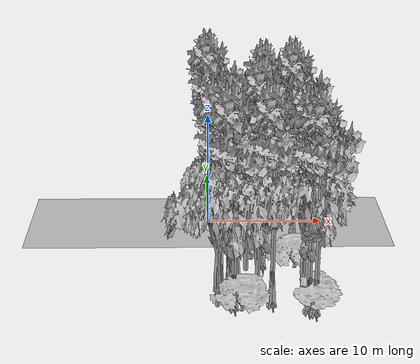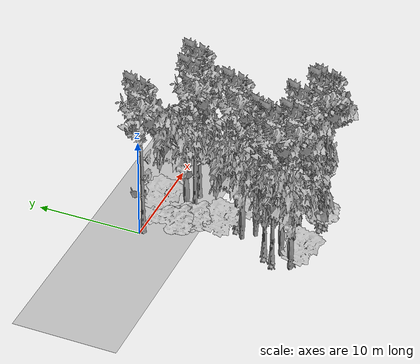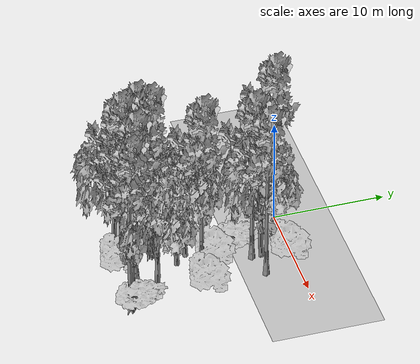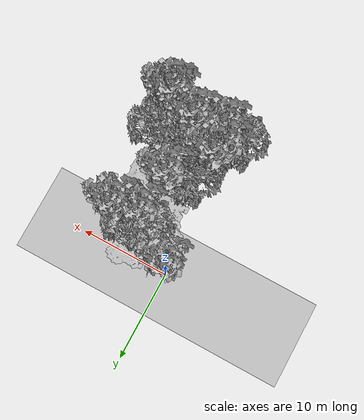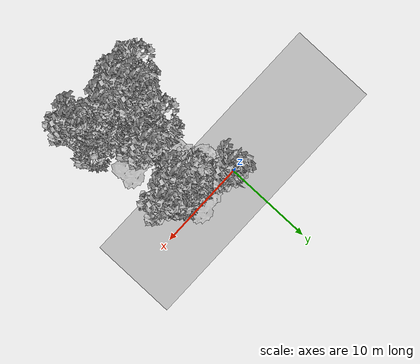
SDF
<sdf version="1.7">
 <world name="default">
  <model name="ground_plane">
   <static>1</static>
   <link name="link">
    <collision name="collision">
     <pose>-50 0 0 0 -0 0</pose>
     <geometry><plane><normal>0 0 1</normal><size>100 100</size></plane></geometry>
     <surface><contact><ode><min_depth>0.01</min_depth><max_vel>0</max_vel></ode></contact></surface>
    </collision>
    <visual name="grass">
     <cast_shadows>0</cast_shadows>
     <geometry>
      <mesh>
       <scale>0.5814285714285714 0.18142857142857144 0.1</scale>
       <uri>file://grass_plane/meshes/grass_plane.dae</uri>
      </mesh>
     </geometry>
    </visual>
   </link>
  </model>
  <model name="Tree 2">
   <static>1</static>
   <pose>4.6822532477561225 -2.6083627503364912 0 1.57079 -0 0</pose>
   <link name="link">
    <collision name="collision">
     <geometry><mesh><scale>3.5 5 3.5</scale><uri>model://tree_2/meshes/tree_2.obj</uri></mesh></geometry>
    </collision>
    <visual name="visual">
     <geometry><mesh><scale>3.5 5 3.5</scale><uri>model://tree_2/meshes/tree_2.obj</uri></mesh></geometry>
    </visual>
   </link>
  </model>
  <model name="Tree 41">
   <static>1</static>
   <pose>2.8465803868380988 -8.830586241369659 0 1.57079 -0 0</pose>
   <link name="link">
    <collision name="collision">
     <geometry><mesh><scale>3.5 5 3.5</scale><uri>model://tree_2/meshes/tree_2.obj</uri></mesh></geometry>
    </collision>
    <visual name="visual">
     <geometry><mesh><scale>3.5 5 3.5</scale><uri>model://tree_2/meshes/tree_2.obj</uri></mesh></geometry>
    </visual>
   </link>
  </model>
  <model name="Tree 59">
   <static>1</static>
   <pose>1.4722594682029424 -11.538113126309607 0 1.57079 -0 0</pose>
   <link name="link">
    <collision name="collision">
     <geometry><mesh><scale>3.5 5 3.5</scale><uri>model://tree_9/meshes/tree_9.obj</uri></mesh></geometry>
    </collision>
    <visual name="visual">
     <geometry><mesh><scale>3.5 5 3.5</scale><uri>model://tree_9/meshes/tree_9.obj</uri></mesh></geometry>
    </visual>
   </link>
  </model>
  <model name="Tree 79">
   <static>1</static>
   <pose>4.681067405825182 -0.435023142516485 0 1.57079 -0 0</pose>
   <link name="link">
    <collision name="collision">
     <geometry><mesh><scale>3 2 3</scale><uri>model://tree_3/meshes/tree_3.obj</uri></mesh></geometry>
    </collision>
    <visual name="visual">
     <geometry><mesh><scale>3 2 3</scale><uri>model://tree_3/meshes/tree_3.obj</uri></mesh></geometry>
    </visual>
   </link>
  </model>
  <model name="Tree 132">
   <static>1</static>
   <pose>2.5521715355239536 -4.15453072158339 0 1.57079 -0 0</pose>
   <link name="link">
    <collision name="collision">
     <geometry><mesh><scale>4 2.5 4</scale><uri>model://tree_1/meshes/tree_1.obj</uri></mesh></geometry>
    </collision>
    <visual name="visual">
     <geometry><mesh><scale>4 2.5 4</scale><uri>model://tree_1/meshes/tree_1.obj</uri></mesh></geometry>
    </visual>
   </link>
  </model>
  <model name="Tree 141">
   <static>1</static>
   <pose>0.45623234617409736 -14.361518008566629 0 1.57079 -0 0</pose>
   <link name="link">
    <collision name="collision">
     <geometry><mesh><scale>3.5 5 3.5</scale><uri>model://tree_2/meshes/tree_2.obj</uri></mesh></geometry>
    </collision>
    <visual name="visual">
     <geometry><mesh><scale>3.5 5 3.5</scale><uri>model://tree_2/meshes/tree_2.obj</uri></mesh></geometry>
    </visual>
   </link>
  </model>
  <model name="Tree 161">
   <static>1</static>
   <pose>7.844826275505298 -14.983526526974888 0 1.57079 -0 0</pose>
   <link name="link">
    <collision name="collision">
     <geometry><mesh><scale>3.5 5 3.5</scale><uri>model://tree_9/meshes/tree_9.obj</uri></mesh></geometry>
    </collision>
    <visual name="visual">
     <geometry><mesh><scale>3.5 5 3.5</scale><uri>model://tree_9/meshes/tree_9.obj</uri></mesh></geometry>
    </visual>
   </link>
  </model>
  <model name="Tree 226">
   <static>1</static>
   <pose>0.8188144203377377 -12.519068065319521 0 1.57079 -0 0</pose>
   <link name="link">
    <collision name="collision">
     <geometry><mesh><scale>3.5 5 3.5</scale><uri>model://tree_9/meshes/tree_9.obj</uri></mesh></geometry>
    </collision>
    <visual name="visual">
     <geometry><mesh><scale>3.5 5 3.5</scale><uri>model://tree_9/meshes/tree_9.obj</uri></mesh></geometry>
    </visual>
   </link>
  </model>
  <model name="Tree 230">
   <static>1</static>
   <pose>4.677286906296274 -13.644620102970485 0 1.57079 -0 0</pose>
   <link name="link">
    <collision name="collision">
     <geometry><mesh><scale>3.5 5 3.5</scale><uri>model://tree_9/meshes/tree_9.obj</uri></mesh></geometry>
    </collision>
    <visual name="visual">
     <geometry><mesh><scale>3.5 5 3.5</scale><uri>model://tree_9/meshes/tree_9.obj</uri></mesh></geometry>
    </visual>
   </link>
  </model>
  <model name="Tree 240">
   <static>1</static>
   <pose>1.7736065250483293 -14.134339073286258 0 1.57079 -0 0</pose>
   <link name="link">
    <collision name="collision">
     <geometry><mesh><scale>3.5 5 3.5</scale><uri>model://tree_9/meshes/tree_9.obj</uri></mesh></geometry>
    </collision>
    <visual name="visual">
     <geometry><mesh><scale>3.5 5 3.5</scale><uri>model://tree_9/meshes/tree_9.obj</uri></mesh></geometry>
    </visual>
   </link>
  </model>
  <model name="Tree 244">
   <static>1</static>
   <pose>4.8147158899447575 -3.441245897927871 0 1.57079 -0 0</pose>
   <link name="link">
    <collision name="collision">
     <geometry><mesh><scale>3.5 5 3.5</scale><uri>model://tree_9/meshes/tree_9.obj</uri></mesh></geometry>
    </collision>
    <visual name="visual">
     <geometry><mesh><scale>3.5 5 3.5</scale><uri>model://tree_9/meshes/tree_9.obj</uri></mesh></geometry>
    </visual>
   </link>
  </model>
  <model name="Tree 267">
   <static>1</static>
   <pose>7.846613882782954 -14.179319863213466 0 1.57079 -0 0</pose>
   <link name="link">
    <collision name="collision">
     <geometry><mesh><scale>4 2.5 4</scale><uri>model://tree_1/meshes/tree_1.obj</uri></mesh></geometry>
    </collision>
    <visual name="visual">
     <geometry><mesh><scale>4 2.5 4</scale><uri>model://tree_1/meshes/tree_1.obj</uri></mesh></geometry>
    </visual>
   </link>
  </model>
  <model name="Tree 288">
   <static>1</static>
   <pose>1.3868517845281545 -2.8453884145916994 0 1.57079 -0 0</pose>
   <link name="link">
    <collision name="collision">
     <geometry><mesh><scale>4 2.5 4</scale><uri>model://tree_1/meshes/tree_1.obj</uri></mesh></geometry>
    </collision>
    <visual name="visual">
     <geometry><mesh><scale>4 2.5 4</scale><uri>model://tree_1/meshes/tree_1.obj</uri></mesh></geometry>
    </visual>
   </link>
  </model>
  <model name="Tree 290">
   <static>1</static>
   <pose>0.3330174831010311 -0.2415561761148428 0 1.57079 -0 0</pose>
   <link name="link">
    <collision name="collision">
     <geometry><mesh><scale>3.5 5 3.5</scale><uri>model://tree_9/meshes/tree_9.obj</uri></mesh></geometry>
    </collision>
    <visual name="visual">
     <geometry><mesh><scale>3.5 5 3.5</scale><uri>model://tree_9/meshes/tree_9.obj</uri></mesh></geometry>
    </visual>
   </link>
  </model>
  <model name="Tree 314">
   <static>1</static>
   <pose>3.4847568370514566 -6.806772549176035 0 1.57079 -0 0</pose>
   <link name="link">
    <collision name="collision">
     <geometry><mesh><scale>3 2 3</scale><uri>model://tree_3/meshes/tree_3.obj</uri></mesh></geometry>
    </collision>
    <visual name="visual">
     <geometry><mesh><scale>3 2 3</scale><uri>model://tree_3/meshes/tree_3.obj</uri></mesh></geometry>
    </visual>
   </link>
  </model>
  <model name="Tree 320">
   <static>1</static>
   <pose>6.917927876457121 -8.264078838836944 0 1.57079 -0 0</pose>
   <link name="link">
    <collision name="collision">
     <geometry><mesh><scale>3 2 3</scale><uri>model://tree_3/meshes/tree_3.obj</uri></mesh></geometry>
    </collision>
    <visual name="visual">
     <geometry><mesh><scale>3 2 3</scale><uri>model://tree_3/meshes/tree_3.obj</uri></mesh></geometry>
    </visual>
   </link>
  </model>
  <model name="Tree 344">
   <static>1</static>
   <pose>7.359411901267585 -14.620818345956598 0 1.57079 -0 0</pose>
   <link name="link">
    <collision name="collision">
     <geometry><mesh><scale>3.5 5 3.5</scale><uri>model://tree_9/meshes/tree_9.obj</uri></mesh></geometry>
    </collision>
    <visual name="visual">
     <geometry><mesh><scale>3.5 5 3.5</scale><uri>model://tree_9/meshes/tree_9.obj</uri></mesh></geometry>
    </visual>
   </link>
  </model>
  <model name="Tree 345">
   <static>1</static>
   <pose>4.286944015114997 -7.731451969871824 0 1.57079 -0 0</pose>
   <link name="link">
    <collision name="collision">
     <geometry><mesh><scale>3.5 5 3.5</scale><uri>model://tree_9/meshes/tree_9.obj</uri></mesh></geometry>
    </collision>
    <visual name="visual">
     <geometry><mesh><scale>3.5 5 3.5</scale><uri>model://tree_9/meshes/tree_9.obj</uri></mesh></geometry>
    </visual>
   </link>
  </model>
  <model name="Tree 373">
   <static>1</static>
   <pose>3.7398351163063595 -9.822338960195331 0 1.57079 -0 0</pose>
   <link name="link">
    <collision name="collision">
     <geometry><mesh><scale>3.5 5 3.5</scale><uri>model://tree_2/meshes/tree_2.obj</uri></mesh></geometry>
    </collision>
    <visual name="visual">
     <geometry><mesh><scale>3.5 5 3.5</scale><uri>model://tree_2/meshes/tree_2.obj</uri></mesh></geometry>
    </visual>
   </link>
  </model>
  <model name="Tree 426">
   <static>1</static>
   <pose>7.208752691964271 -2.8840762207789776 0 1.57079 -0 0</pose>
   <link name="link">
    <collision name="collision">
     <geometry><mesh><scale>3.5 5 3.5</scale><uri>model://tree_9/meshes/tree_9.obj</uri></mesh></geometry>
    </collision>
    <visual name="visual">
     <geometry><mesh><scale>3.5 5 3.5</scale><uri>model://tree_9/meshes/tree_9.obj</uri></mesh></geometry>
    </visual>
   </link>
  </model>
  <model name="Tree 458">
   <static>1</static>
   <pose>2.36181830326575 -14.874923142716685 0 1.57079 -0 0</pose>
   <link name="link">
    <collision name="collision">
     <geometry><mesh><scale>3 2 3</scale><uri>model://tree_3/meshes/tree_3.obj</uri></mesh></geometry>
    </collision>
    <visual name="visual">
     <geometry><mesh><scale>3 2 3</scale><uri>model://tree_3/meshes/tree_3.obj</uri></mesh></geometry>
    </visual>
   </link>
  </model>
  <model name="Tree 507">
   <static>1</static>
   <pose>1.9641773449363527 -12.934311810595618 0 1.57079 -0 0</pose>
   <link name="link">
    <collision name="collision">
     <geometry><mesh><scale>3.5 5 3.5</scale><uri>model://tree_2/meshes/tree_2.obj</uri></mesh></geometry>
    </collision>
    <visual name="visual">
     <geometry><mesh><scale>3.5 5 3.5</scale><uri>model://tree_2/meshes/tree_2.obj</uri></mesh></geometry>
    </visual>
   </link>
  </model>
  <model name="Tree 518">
   <static>1</static>
   <pose>7.08540261065572 -12.39162122942787 0 1.57079 -0 0</pose>
   <link name="link">
    <collision name="collision">
     <geometry><mesh><scale>3.5 5 3.5</scale><uri>model://tree_2/meshes/tree_2.obj</uri></mesh></geometry>
    </collision>
    <visual name="visual">
     <geometry><mesh><scale>3.5 5 3.5</scale><uri>model://tree_2/meshes/tree_2.obj</uri></mesh></geometry>
    </visual>
   </link>
  </model>
 </world>
</sdf>
